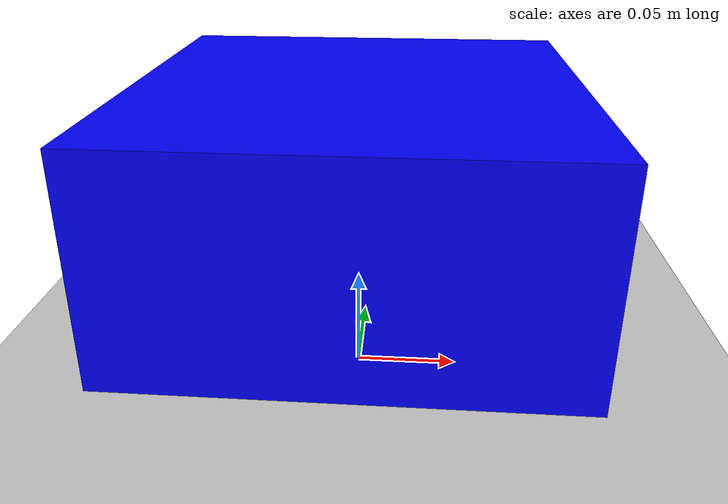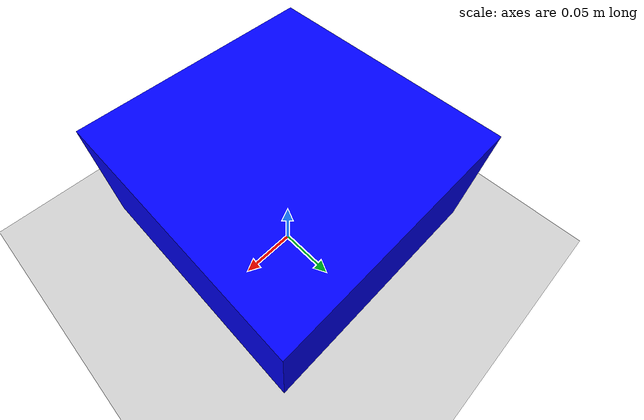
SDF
<?xml version="1.0" ?>
<!-- Simple robot world with IMU sensor for testing the plugin -->
<sdf version="1.9">
  <world name="imu_sensor_world">
    <!-- Physics configuration -->
    <physics name="default_physics" type="ode">
      <max_step_size>0.001</max_step_size>
      <real_time_factor>1.0</real_time_factor>
      <real_time_update_rate>1000</real_time_update_rate>
    </physics>

    <!-- Gravity -->
    <gravity>0 0 -9.8</gravity>

    <!-- Ground plane -->
    <model name="ground_plane">
      <static>true</static>
      <link name="link">
        <collision name="collision">
          <geometry>
            <plane>
              <normal>0 0 1</normal>
              <size>100 100</size>
            </plane>
          </geometry>
        </collision>
        <visual name="visual">
          <geometry>
            <plane>
              <normal>0 0 1</normal>
              <size>100 100</size>
            </plane>
          </geometry>
          <material>
            <ambient>0.8 0.8 0.8 1</ambient>
            <diffuse>0.8 0.8 0.8 1</diffuse>
            <specular>0.8 0.8 0.8 1</specular>
          </material>
        </visual>
      </link>
    </model>

    <!-- Simple robot model with IMU -->
    <model name="test_robot">
      <pose>0 0 0.1 0 0 0</pose>

      <!-- Base link -->
      <link name="base_link">
        <inertial>
          <mass>1.0</mass>
          <inertia>
            <ixx>0.01</ixx>
            <iyy>0.01</iyy>
            <izz>0.01</izz>
          </inertia>
        </inertial>

        <!-- Collision geometry -->
        <collision name="base_collision">
          <geometry>
            <box>
              <size>0.2 0.2 0.1</size>
            </box>
          </geometry>
        </collision>

        <!-- Visual geometry -->
        <visual name="base_visual">
          <geometry>
            <box>
              <size>0.2 0.2 0.1</size>
            </box>
          </geometry>
          <material>
            <ambient>0 0 1 1</ambient>
            <diffuse>0 0 1 1</diffuse>
            <specular>0.8 0.8 0.8 1</specular>
          </material>
        </visual>
      </link>

      <!-- IMU link (typically at the center of the robot) -->
      <link name="imu_link">
        <pose relative_to="base_link">0 0 0 0 0 0</pose>
        <inertial>
          <mass>0.1</mass>
          <inertia>
            <ixx>0.001</ixx>
            <iyy>0.001</iyy>
            <izz>0.001</izz>
          </inertia>
        </inertial>

        <collision name="imu_collision">
          <geometry>
            <sphere>
              <radius>0.02</radius>
            </sphere>
          </geometry>
        </collision>

        <visual name="imu_visual">
          <geometry>
            <sphere>
              <radius>0.02</radius>
            </sphere>
          </geometry>
          <material>
            <ambient>1 0 0 1</ambient>
            <diffuse>1 0 0 1</diffuse>
            <specular>0.8 0.8 0.8 1</specular>
          </material>
        </visual>
      </link>

      <!-- Weld base_link and imu_link together -->
      <joint name="base_imu_joint" type="fixed">
        <child>imu_link</child>
        <parent>base_link</parent>
      </joint>

      <!-- Noise-augmented IMU sensor plugin -->
      <plugin name="noise_imu_sensor" filename="libnoise_imu_sensor.so">
        <!-- The link on which the IMU is mounted -->
        <link_name>imu_link</link_name>

        <!-- Noise parameters (Gaussian distribution) -->
        <accel_noise_sigma>0.01</accel_noise_sigma>      <!-- m/s² -->
        <gyro_noise_sigma>0.001</gyro_noise_sigma>         <!-- rad/s -->
        <mag_noise_sigma>0.1</mag_noise_sigma>             <!-- Tesla -->

        <!-- Publication rate -->
        <update_rate>100</update_rate>                     <!-- Hz -->

        <!-- Output Gazebo transport topic -->
        <output_topic>/gz/sim/imu/data</output_topic>
      </plugin>
    </model>
  </world>
</sdf>
